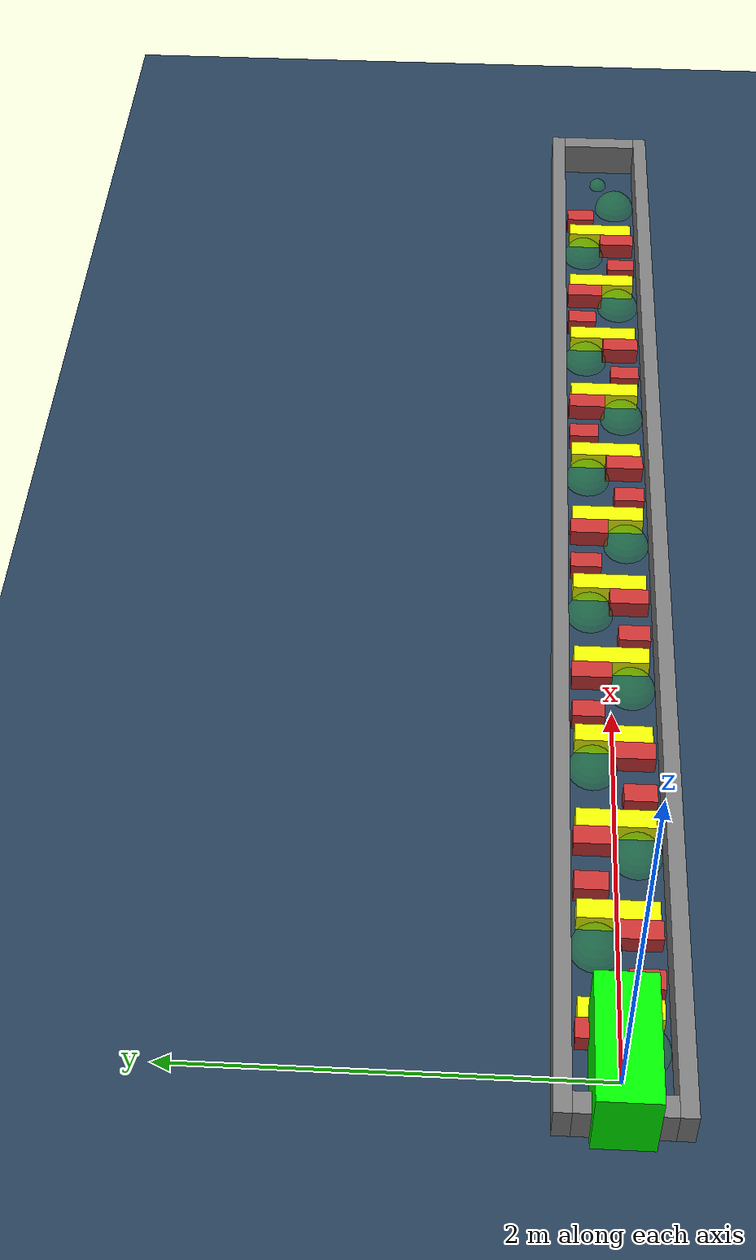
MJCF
<mujoco model="go1 scene">

  <worldbody>
    <light pos="0 0 1.5" dir="0 0 -1" directional="true" />
    <geom name="floor" size="0 0 0.05" type="plane" material="groundplane" friction=".5 0.005 0.001"
      priority="2" condim="4" />

    <body name="robot" pos="0. 0.0 .2" euler="0 0 0">
      <joint name="joint_x" type="slide" pos="0 0 0" axis="1 0 0" />
      <joint name="joint_y" type="slide" pos="0 0 0" axis="0 1 0" />
      <joint name="joint_z" type="hinge" pos="0 0 0" axis="0 0 1" />
      <geom name="robot" type="box" size="0.3 0.14 0.2" mass=".1" material="robot" condim="4" />
    </body>

  </worldbody>

  <include file="./push/turning_interactions/12.xml" />

  <statistic center="0 0 0.1" extent="0.8"/>

  <visual>
    <headlight diffuse="0.6 0.6 0.6" ambient="0.3 0.3 0.3" specular="0 0 0"/>
    <rgba haze="0.15 0.25 0.35 1"/>
    <global azimuth="120" elevation="-20"/>
  </visual>

  <asset>
    <material name="robot" rgba="0.0 1.0 0.0 1"/>
    <texture type="skybox" builtin="gradient" rgb1="0.3 0.5 0.7" rgb2="0 0 0" width="512"
      height="3072" />
    <texture type="2d" name="groundplane" builtin="checker" mark="edge" rgb1="0.2 0.3 0.4"
      rgb2="0.1 0.2 0.3"
      markrgb="0.8 0.8 0.8" width="300" height="300" />
    <material name="groundplane" texture="groundplane" texuniform="true" texrepeat="5 5"
      reflectance="0.2" />

  </asset>

  <actuator>
    <velocity name="actuator_x" joint="joint_x" gear="1" />
    <velocity name="actuator_y" joint="joint_y" gear="1" />
    <velocity name="actuator_z" joint="joint_z" gear="1" />
  </actuator>

</mujoco>

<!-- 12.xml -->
<mujoco>
  <option timestep="0.01" integrator="RK4" />
  <worldbody>
    <light pos="0 0 1.5" dir="0 0 -1" directional="true" />
    <geom name="floor" size="0 0 0.05" type="plane" material="groundplane" friction=".5 0.005 0.001"
      priority="2" condim="4" />
  </worldbody>

  <worldbody>

    <body name="ball" pos=".0 0 .05">
      <geom name="gball_0" type="sphere" size="0.02" mass="5." material="BallMat"
        friction=".5 0.005 0.001 " condim="4" />
      <site name="sensor_ball" />
      <joint name="joint_x" type="slide" pos="0 0 0" axis="1 0 0" />
      <joint name="joint_y" type="slide" pos="0 0 0" axis="0 1 0" />
    </body>

    <body name="wall_1" pos="0.2 0.1 .05">
      <geom name="wall_1" type="box" size="0.05 0.1 0.05" mass=".1" material="static" condim="4" />
    </body>

    <body name="wall_2" pos="0.45 -0.12 .05">
      <geom name="wall_2" type="box" size="0.05 0.08 0.05" mass=".1" material="static" condim="4" />
    </body>

    <body name="movable_cube1" pos="0.3 0 .05" euler="0 0 0">
      <freejoint />
      <geom name="movable_cube1" type="box" size="0.05 0.19 0.05" mass=".1" material="movable"
        condim="4" />
    </body>

    <body name="wall_3" pos="0.7 -0.1 .05">
      <geom name="wall_3" type="box" size="0.05 0.1 0.05" mass=".1" material="static" condim="4" />
    </body>

    <body name="wall_4" pos="0.95 0.12 .05">
      <geom name="wall_4" type="box" size="0.05 0.08 0.05" mass=".1" material="static" condim="4" />
    </body>

    <body name="movable_cube2" pos="0.8 0 .05" euler="0 0 0">
      <freejoint />
      <geom name="movable_cube2" type="box" size="0.05 0.19 0.05" mass=".1" material="movable"
        condim="4" />
    </body>

    <body name="wall_5" pos="1.2 0.1 .05">
      <geom name="wall_5" type="box" size="0.05 0.1 0.05" mass=".1" material="static" condim="4" />
    </body>

    <body name="wall_6" pos="1.45 -0.12 .05">
      <geom name="wall_6" type="box" size="0.05 0.08 0.05" mass=".1" material="static" condim="4" />
    </body>

    <body name="movable_cube3" pos="1.3 0 .05" euler="0 0 0">
      <freejoint />
      <geom name="movable_cube3" type="box" size="0.05 0.19 0.05" mass=".1" material="movable"
        condim="4" />
    </body>

    <body name="wall_7" pos="1.7 -0.1 .05">
      <geom name="wall_7" type="box" size="0.05 0.1 0.05" mass=".1" material="static" condim="4" />
    </body>

    <body name="wall_8" pos="1.95 0.12 .05">
      <geom name="wall_8" type="box" size="0.05 0.08 0.05" mass=".1" material="static" condim="4" />
    </body>

    <body name="movable_cube4" pos="1.8 0 .05" euler="0 0 0">
      <freejoint />
      <geom name="movable_cube4" type="box" size="0.05 0.19 0.05" mass=".1" material="movable"
        condim="4" />
    </body>

    <body name="wall_9" pos="2.2 0.1 .05">
      <geom name="wall_9" type="box" size="0.05 0.1 0.05" mass=".1" material="static" condim="4" />
    </body>

    <body name="wall_10" pos="2.45 -0.12 .05">
      <geom name="wall_10" type="box" size="0.05 0.08 0.05" mass=".1" material="static" condim="4" />
    </body>

    <body name="movable_cube5" pos="2.3 0 .05" euler="0 0 0">
      <freejoint />
      <geom name="movable_cube5" type="box" size="0.05 0.19 0.05" mass=".1" material="movable"
        condim="4" />
    </body>

    <body name="wall_11" pos="2.7 -0.1 .05">
      <geom name="wall_11" type="box" size="0.05 0.1 0.05" mass=".1" material="static" condim="4" />
    </body>

    <body name="wall_12" pos="2.95 0.12 .05">
      <geom name="wall_12" type="box" size="0.05 0.08 0.05" mass=".1" material="static" condim="4" />
    </body>

    <body name="movable_cube6" pos="2.8 0 .05" euler="0 0 0">
      <freejoint />
      <geom name="movable_cube6" type="box" size="0.05 0.19 0.05" mass=".1" material="movable"
        condim="4" />
    </body>

    <body name="wall_13" pos="3.2 0.1 .05">
      <geom name="wall_13" type="box" size="0.05 0.1 0.05" mass=".1" material="static" condim="4" />
    </body>

    <body name="wall_14" pos="3.45 -0.12 .05">
      <geom name="wall_14" type="box" size="0.05 0.08 0.05" mass=".1" material="static" condim="4" />
    </body>

    <body name="movable_cube7" pos="3.3 0 .05" euler="0 0 0">
      <freejoint />
      <geom name="movable_cube7" type="box" size="0.05 0.19 0.05" mass=".1" material="movable"
        condim="4" />
    </body>

    <body name="wall_15" pos="3.7 -0.1 .05">
      <geom name="wall_15" type="box" size="0.05 0.1 0.05" mass=".1" material="static" condim="4" />
    </body>

    <body name="wall_16" pos="3.95 0.12 .05">
      <geom name="wall_16" type="box" size="0.05 0.08 0.05" mass=".1" material="static" condim="4" />
    </body>

    <body name="movable_cube8" pos="3.8 0 .05" euler="0 0 0">
      <freejoint />
      <geom name="movable_cube8" type="box" size="0.05 0.19 0.05" mass=".1" material="movable"
        condim="4" />
    </body>

    <body name="wall_17" pos="4.2 0.1 .05">
      <geom name="wall_17" type="box" size="0.05 0.1 0.05" mass=".1" material="static" condim="4" />
    </body>

    <body name="wall_18" pos="4.45 -0.12 .05">
      <geom name="wall_18" type="box" size="0.05 0.08 0.05" mass=".1" material="static" condim="4" />
    </body>

    <body name="movable_cube9" pos="4.3 0 .05" euler="0 0 0">
      <freejoint />
      <geom name="movable_cube9" type="box" size="0.05 0.19 0.05" mass=".1" material="movable"
        condim="4" />
    </body>

    <body name="wall_19" pos="4.7 -0.1 .05">
      <geom name="wall_19" type="box" size="0.05 0.1 0.05" mass=".1" material="static" condim="4" />
    </body>

    <body name="wall_20" pos="4.95 0.12 .05">
      <geom name="wall_20" type="box" size="0.05 0.08 0.05" mass=".1" material="static" condim="4" />
    </body>

    <body name="movable_cube10" pos="4.8 0 .05" euler="0 0 0">
      <freejoint />
      <geom name="movable_cube10" type="box" size="0.05 0.19 0.05" mass=".1" material="movable"
        condim="4" />
    </body>

    <body name="wall_21" pos="5.2 0.1 .05">
      <geom name="wall_21" type="box" size="0.05 0.1 0.05" mass=".1" material="static" condim="4" />
    </body>

    <body name="wall_22" pos="5.45 -0.12 .05">
      <geom name="wall_22" type="box" size="0.05 0.08 0.05" mass=".1" material="static" condim="4" />
    </body>

    <body name="movable_cube11" pos="5.3 0 .05" euler="0 0 0">
      <freejoint />
      <geom name="movable_cube11" type="box" size="0.05 0.19 0.05" mass=".1" material="movable"
        condim="4" />
    </body>

    <body name="wall_23" pos="5.7 -0.1 .05">
      <geom name="wall_23" type="box" size="0.05 0.1 0.05" mass=".1" material="static" condim="4" />
    </body>

    <body name="wall_24" pos="5.95 0.12 .05">
      <geom name="wall_24" type="box" size="0.05 0.08 0.05" mass=".1" material="static" condim="4" />
    </body>

    <body name="movable_cube12" pos="5.8 0 .05" euler="0 0 0">
      <freejoint />
      <geom name="movable_cube12" type="box" size="0.05 0.19 0.05" mass=".1" material="movable"
        condim="4" />
    </body>

    <body name="case" pos="0 0 0.1">
      <geom name="gcase_a" type="box" size="0.05 0.22 0.1" pos="-.2 0 0" />
      <geom name="gcase_b" type="box" size="0.05 0.22 0.1" pos="6.6 0 0" />
      <geom name="gcase_c" type="box" size="3.45 0.04 0.1" pos="3.2 .26 0" />
      <geom name="gcase_d" type="box" size="3.45 0.04 0.1" pos="3.2 -.26 0" />
    </body>

<site name="target1" pos="0.15 -0.1 0.0" size="0.12" rgba="0 1 0 0.1" />
<site name="target2" pos="0.3 -0.1 0.0" size="0.05" rgba="0 1 0 0.1" />
<site name="target3" pos="0.3 0.1 0.0" size="0.05" rgba="0 1 0 0.1" />
<site name="target4" pos="0.65 0.1 0.0" size="0.12" rgba="0 1 0 0.1" />
<site name="target5" pos="0.8 0.1 0.0" size="0.05" rgba="0 1 0 0.1" />
<site name="target6" pos="0.8 -0.1 0.0" size="0.05" rgba="0 1 0 0.1" />
<site name="target7" pos="1.15 -0.1 0.0" size="0.12" rgba="0 1 0 0.1" />
<site name="target8" pos="1.3 -0.1 0.0" size="0.05" rgba="0 1 0 0.1" />
<site name="target9" pos="1.3 0.1 0.0" size="0.05" rgba="0 1 0 0.1" />
<site name="target10" pos="1.65 0.1 0.0" size="0.12" rgba="0 1 0 0.1" />
<site name="target11" pos="1.8 0.1 0.0" size="0.05" rgba="0 1 0 0.1" />
<site name="target12" pos="1.8 -0.1 0.0" size="0.05" rgba="0 1 0 0.1" />
<site name="target13" pos="2.15 -0.1 0.0" size="0.12" rgba="0 1 0 0.1" />
<site name="target14" pos="2.3 -0.1 0.0" size="0.05" rgba="0 1 0 0.1" />
<site name="target15" pos="2.3 0.1 0.0" size="0.05" rgba="0 1 0 0.1" />
<site name="target16" pos="2.65 0.1 0.0" size="0.12" rgba="0 1 0 0.1" />
<site name="target17" pos="2.8 0.1 0.0" size="0.05" rgba="0 1 0 0.1" />
<site name="target18" pos="2.8 -0.1 0.0" size="0.05" rgba="0 1 0 0.1" />
<site name="target19" pos="3.15 -0.1 0.0" size="0.12" rgba="0 1 0 0.1" />
<site name="target20" pos="3.3 -0.1 0.0" size="0.05" rgba="0 1 0 0.1" />
<site name="target21" pos="3.3 0.1 0.0" size="0.05" rgba="0 1 0 0.1" />
<site name="target22" pos="3.65 0.1 0.0" size="0.12" rgba="0 1 0 0.1" />
<site name="target23" pos="3.8 0.1 0.0" size="0.05" rgba="0 1 0 0.1" />
<site name="target24" pos="3.8 -0.1 0.0" size="0.05" rgba="0 1 0 0.1" />
<site name="target25" pos="4.15 -0.1 0.0" size="0.12" rgba="0 1 0 0.1" />
<site name="target26" pos="4.3 -0.1 0.0" size="0.05" rgba="0 1 0 0.1" />
<site name="target27" pos="4.3 0.1 0.0" size="0.05" rgba="0 1 0 0.1" />
<site name="target28" pos="4.65 0.1 0.0" size="0.12" rgba="0 1 0 0.1" />
<site name="target29" pos="4.8 0.1 0.0" size="0.05" rgba="0 1 0 0.1" />
<site name="target30" pos="4.8 -0.1 0.0" size="0.05" rgba="0 1 0 0.1" />
<site name="target31" pos="5.15 -0.1 0.0" size="0.12" rgba="0 1 0 0.1" />
<site name="target32" pos="5.3 -0.1 0.0" size="0.05" rgba="0 1 0 0.1" />
<site name="target33" pos="5.3 0.1 0.0" size="0.05" rgba="0 1 0 0.1" />
<site name="target34" pos="5.65 0.1 0.0" size="0.12" rgba="0 1 0 0.1" />
<site name="target35" pos="5.8 0.1 0.0" size="0.05" rgba="0 1 0 0.1" />
<site name="target36" pos="5.8 -0.1 0.0" size="0.05" rgba="0 1 0 0.1" />
<site name="target37" pos="6.15 -0.1 0.0" size="0.12" rgba="0 1 0 0.1" />
<site name="target38" pos="6.4 0.0 0.0" size="0.05" rgba="0 1 0 0.1" />

  </worldbody>

  <actuator>
    <motor name="actuator_x" joint="joint_x" gear="1" />
    <motor name="actuator_y" joint="joint_y" gear="1" />
  </actuator>

  <asset>
    <!-- Materials for visualization -->
    <material name="MatPlane" rgba="0.8 0.9 0.8 1" />
    <material name="movable" rgba="0.94 1.0 0.0 1" />
    <material name="static" rgba="0.8 0.2 0.2 1" />
    <material name="BallMat" rgba="0.2 0.2 0.8 1" />

    <texture type="skybox" builtin="gradient" rgb1="0.3 0.5 0.7" rgb2="0 0 0" width="512"
      height="3072" />
    <texture type="2d" name="groundplane" builtin="checker" mark="edge" rgb1="0.2 0.3 0.4"
      rgb2="0.1 0.2 0.3"
      markrgb="0.8 0.8 0.8" width="300" height="300" />
    <material name="groundplane" texture="groundplane" texuniform="true" texrepeat="5 5"
      reflectance="0.2" />
  </asset>

  <visual>
    <headlight diffuse="0.6 0.6 0.6" ambient="0.3 0.3 0.3" specular="0 0 0" />
    <rgba haze="0.15 0.25 0.35 1" />
    <global azimuth="60" elevation="-20" />
  </visual>

  <sensor>
    <velocimeter name="sensor_ball" site="sensor_ball" />
  </sensor>

</mujoco>
